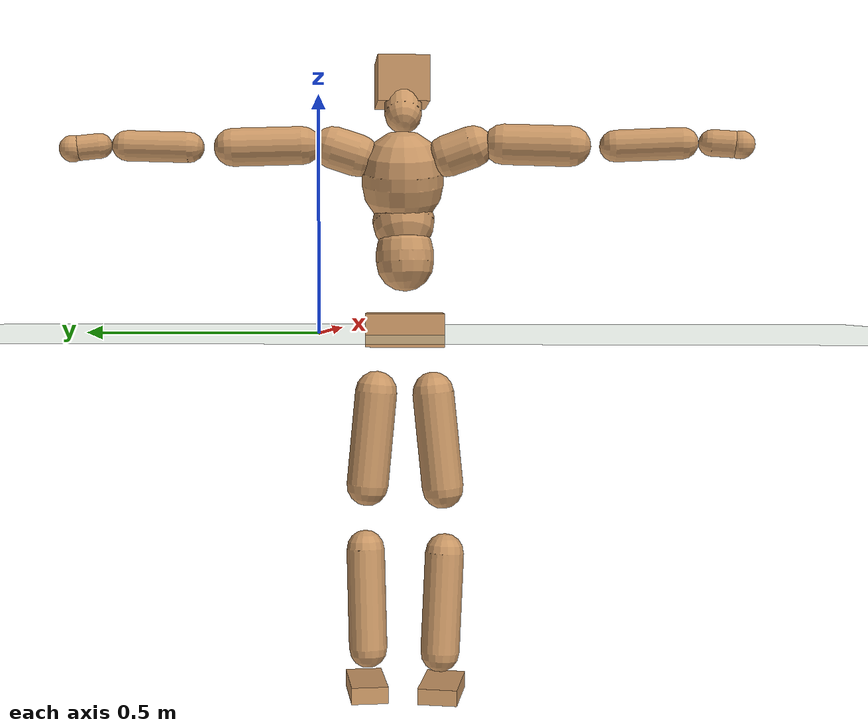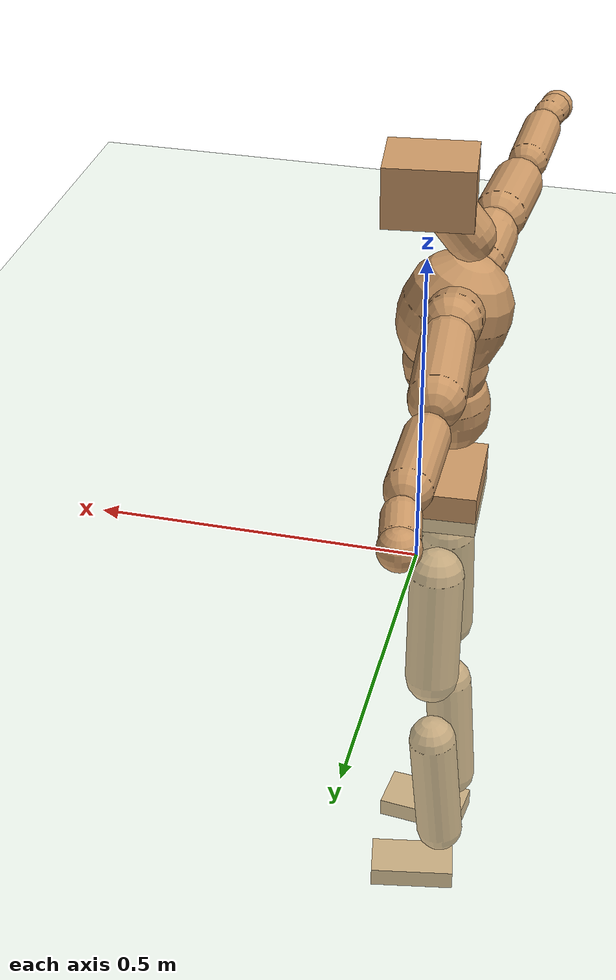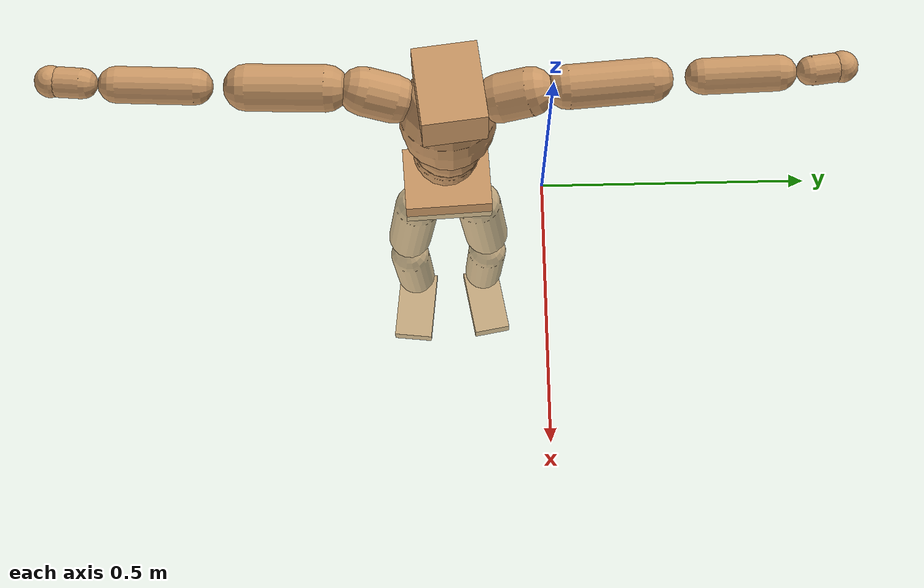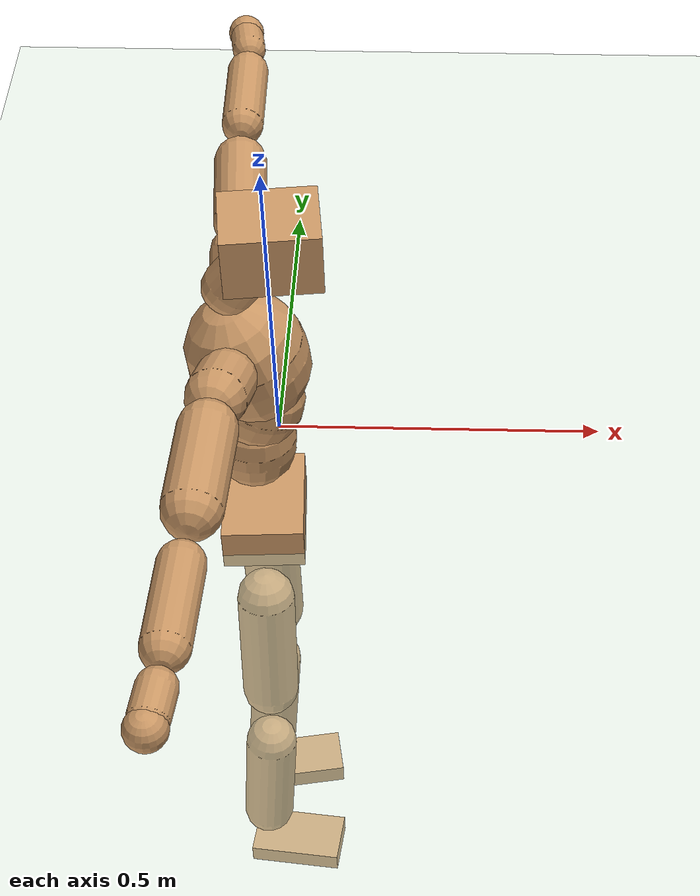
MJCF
<mujoco model="humanoid">
  <compiler coordinate="local" angle="radian"/>
  <default>
    <joint damping="0.0" armature="0.01" stiffness="0.0" limited="true"/>
    <geom conaffinity="1" condim="3" contype="7" margin="0.001" rgba="0.8 0.6 .4 1"/>
  </default>
  <asset>
    <texture type="skybox" builtin="gradient" rgb1=".4 .5 .6" rgb2="0 0 0" width="100" height="100"/>
    <texture builtin="flat" height="1278" mark="cross" markrgb="1 1 1" name="texgeom" random="0.01" rgb1="0.8 0.6 0.4" rgb2="0.8 0.6 0.4" type="cube" width="127"/>
    <texture builtin="checker" height="100" name="texplane" rgb1="0 0 0" rgb2="0.8 0.8 0.8" type="2d" width="100"/>
    <material name="MatPlane" reflectance="0.5" shininess="1" specular="1" texrepeat="60 60" texture="texplane"/>
    <material name="geom" texture="texgeom" texuniform="true"/>
  </asset>
  <worldbody>
    <light cutoff="100" diffuse="1 1 1" dir="-0 0 -1.3" directional="true" exponent="1" pos="0 0 1.3" specular=".1 .1 .1"/>
    <geom conaffinity="1" condim="3" name="floor" pos="0 0 0" rgba="0.8 0.9 0.8 1" size="100 100 .2" type="plane" material="MatPlane"/>
    <body name="Pelvis" pos="-0.003 -0.1813 0.0187">
      <freejoint name="Pelvis"/>
      <geom type="box" contype="1" conaffinity="1" density="500" pos="-0.0045 -0.0002 -0.0109" size="0.0604 0.0816 0.0347" quat="0.9997 0.0000 0.0000 0.0260" name="Pelvis"/>
      <body name="L_Hip" pos="-0.009 0.054 -0.076">
        <joint name="L_Hip_x" type="hinge" pos="0 0 0" axis="1 0 0" stiffness="800" damping="80" armature="0.02" range="-180.0000 180.0000"/>
        <joint name="L_Hip_y" type="hinge" pos="0 0 0" axis="0 1 0" stiffness="800" damping="80" armature="0.02" range="-180.0000 180.0000"/>
        <joint name="L_Hip_z" type="hinge" pos="0 0 0" axis="0 0 1" stiffness="800" damping="80" armature="0.02" range="-180.0000 180.0000"/>
        <geom type="capsule" contype="1" conaffinity="1" density="500" fromto="-0.0005 0.0060 -0.0659 -0.0021 0.0242 -0.2635" size="0.0442" name="L_Hip"/>
        <body name="L_Knee" pos="-0.0026 0.0302 -0.3294">
          <joint name="L_Knee_x" type="hinge" pos="0 0 0" axis="1 0 0" stiffness="800" damping="80" armature="0.02" range="-180.0000 180.0000"/>
          <joint name="L_Knee_y" type="hinge" pos="0 0 0" axis="0 1 0" stiffness="800" damping="80" armature="0.02" range="-180.0000 180.0000"/>
          <joint name="L_Knee_z" type="hinge" pos="0 0 0" axis="0 0 1" stiffness="800" damping="80" armature="0.02" range="-180.0000 180.0000"/>
          <geom type="capsule" contype="1" conaffinity="1" density="500" fromto="-0.0060 -0.0022 -0.0696 -0.0242 -0.0089 -0.2785" size="0.0401" name="L_Knee"/>
          <body name="L_Ankle" pos="-0.0302 -0.0112 -0.3481">
            <joint name="L_Ankle_x" type="hinge" pos="0 0 0" axis="1 0 0" stiffness="800" damping="80" armature="0.02" range="-180.0000 180.0000"/>
            <joint name="L_Ankle_y" type="hinge" pos="0 0 0" axis="0 1 0" stiffness="800" damping="80" armature="0.02" range="-180.0000 180.0000"/>
            <joint name="L_Ankle_z" type="hinge" pos="0 0 0" axis="0 0 1" stiffness="800" damping="80" armature="0.02" range="-180.0000 180.0000"/>
            <geom type="box" contype="1" conaffinity="1" density="500" pos="0.0513 0.0091 -0.0250" size="0.0719 0.0389 0.0177" quat="0.9961 0.0000 0.0000 0.0879" name="L_Ankle"/>
            <body name="L_Toe" pos="0.1027 0.0183 -0.05">
              <joint name="L_Toe_x" type="hinge" pos="0 0 0" axis="1 0 0" stiffness="500" damping="50" armature="0.02" range="-180.0000 180.0000"/>
              <joint name="L_Toe_y" type="hinge" pos="0 0 0" axis="0 1 0" stiffness="500" damping="50" armature="0.02" range="-180.0000 180.0000"/>
              <joint name="L_Toe_z" type="hinge" pos="0 0 0" axis="0 0 1" stiffness="500" damping="50" armature="0.02" range="-180.0000 180.0000"/>
              <geom type="box" contype="1" conaffinity="1" density="500" pos="0.0000 0.0000 0.0260" size="0.0008 0.002 0.0009" quat="0.9954 0.0000 0.0000 0.0955" name="L_Toe"/>
            </body>
          </body>
        </body>
      </body>
      <body name="R_Hip" pos="-0.0051 -0.0533 -0.0759">
        <joint name="R_Hip_x" type="hinge" pos="0 0 0" axis="1 0 0" stiffness="800" damping="80" armature="0.02" range="-180.0000 180.0000"/>
        <joint name="R_Hip_y" type="hinge" pos="0 0 0" axis="0 1 0" stiffness="800" damping="80" armature="0.02" range="-180.0000 180.0000"/>
        <joint name="R_Hip_z" type="hinge" pos="0 0 0" axis="0 0 1" stiffness="800" damping="80" armature="0.02" range="-180.0000 180.0000"/>
        <geom type="capsule" contype="1" conaffinity="1" density="500" fromto="-0.0008 -0.0069 -0.0672 -0.0030 -0.0276 -0.2688" size="0.0437" name="R_Hip"/>
        <body name="R_Knee" pos="-0.0038 -0.0346 -0.3361">
          <joint name="R_Knee_x" type="hinge" pos="0 0 0" axis="1 0 0" stiffness="800" damping="80" armature="0.02" range="-180.0000 180.0000"/>
          <joint name="R_Knee_y" type="hinge" pos="0 0 0" axis="0 1 0" stiffness="800" damping="80" armature="0.02" range="-180.0000 180.0000"/>
          <joint name="R_Knee_z" type="hinge" pos="0 0 0" axis="0 0 1" stiffness="800" damping="80" armature="0.02" range="-180.0000 180.0000"/>
          <geom type="capsule" contype="1" conaffinity="1" density="500" fromto="-0.0055 0.0029 -0.0697 -0.0218 0.0116 -0.2788" size="0.0408" name="R_Knee"/>
          <body name="R_Ankle" pos="-0.0273 0.0144 -0.3485">
            <joint name="R_Ankle_x" type="hinge" pos="0 0 0" axis="1 0 0" stiffness="800" damping="80" armature="0.02" range="-180.0000 180.0000"/>
            <joint name="R_Ankle_y" type="hinge" pos="0 0 0" axis="0 1 0" stiffness="800" damping="80" armature="0.02" range="-180.0000 180.0000"/>
            <joint name="R_Ankle_z" type="hinge" pos="0 0 0" axis="0 0 1" stiffness="800" damping="80" armature="0.02" range="-180.0000 180.0000"/>
            <geom type="box" contype="1" conaffinity="1" density="500" pos="0.0528 -0.0058 -0.0205" size="0.0741 0.0416 0.0168" quat="0.9985 0.0000 0.0000 -0.0544" name="R_Ankle"/>
            <body name="R_Toe" pos="0.1055 -0.0115 -0.0411">
              <joint name="R_Toe_x" type="hinge" pos="0 0 0" axis="1 0 0" stiffness="500" damping="50" armature="0.02" range="-180.0000 180.0000"/>
              <joint name="R_Toe_y" type="hinge" pos="0 0 0" axis="0 1 0" stiffness="500" damping="50" armature="0.02" range="-180.0000 180.0000"/>
              <joint name="R_Toe_z" type="hinge" pos="0 0 0" axis="0 0 1" stiffness="500" damping="50" armature="0.02" range="-180.0000 180.0000"/>
              <geom type="box" contype="1" conaffinity="1" density="500" pos="0.0000 0.0000 0.0228" size="0.0008 0.0021 0.001" quat="0.9990 0.0000 0.0000 -0.0442" name="R_Toe"/>
            </body>
          </body>
        </body>
      </body>
      <body name="Torso" pos="-0.0127 -0.0021 0.0863">
        <joint name="Torso_x" type="hinge" pos="0 0 0" axis="1 0 0" stiffness="1000" damping="100" armature="0.02" range="-180.0000 180.0000"/>
        <joint name="Torso_y" type="hinge" pos="0 0 0" axis="0 1 0" stiffness="1000" damping="100" armature="0.02" range="-180.0000 180.0000"/>
        <joint name="Torso_z" type="hinge" pos="0 0 0" axis="0 0 1" stiffness="1000" damping="100" armature="0.02" range="-180.0000 180.0000"/>
        <geom type="capsule" contype="1" conaffinity="1" density="500" fromto="0.0032 0.0021 0.0654 0.0021 0.0014 0.0436" size="0.0606" name="Torso"/>
        <body name="Spine" pos="0.0053 0.0035 0.109">
          <joint name="Spine_x" type="hinge" pos="0 0 0" axis="1 0 0" stiffness="1000" damping="100" armature="0.02" range="-180.0000 180.0000"/>
          <joint name="Spine_y" type="hinge" pos="0 0 0" axis="0 1 0" stiffness="1000" damping="100" armature="0.02" range="-180.0000 180.0000"/>
          <joint name="Spine_z" type="hinge" pos="0 0 0" axis="0 0 1" stiffness="1000" damping="100" armature="0.02" range="-180.0000 180.0000"/>
          <geom type="capsule" contype="1" conaffinity="1" density="500" fromto="0.0102 0.0021 0.0261 0.0068 0.0014 0.0174" size="0.0646" name="Spine"/>
          <body name="Chest" pos="0.0169 0.0036 0.0434">
            <joint name="Chest_x" type="hinge" pos="0 0 0" axis="1 0 0" stiffness="1000" damping="100" armature="0.02" range="-180.0000 180.0000"/>
            <joint name="Chest_y" type="hinge" pos="0 0 0" axis="0 1 0" stiffness="1000" damping="100" armature="0.02" range="-180.0000 180.0000"/>
            <joint name="Chest_z" type="hinge" pos="0 0 0" axis="0 0 1" stiffness="1000" damping="100" armature="0.02" range="-180.0000 180.0000"/>
            <geom type="capsule" contype="1" conaffinity="1" density="500" fromto="-0.0230 -0.0012 0.0787 -0.0154 -0.0008 0.0525" size="0.0853" name="Chest"/>
            <body name="Neck" pos="-0.046 -0.0034 0.1832">
              <joint name="Neck_x" type="hinge" pos="0 0 0" axis="1 0 0" stiffness="500" damping="50" armature="0.02" range="-180.0000 180.0000"/>
              <joint name="Neck_y" type="hinge" pos="0 0 0" axis="0 1 0" stiffness="500" damping="50" armature="0.02" range="-180.0000 180.0000"/>
              <joint name="Neck_z" type="hinge" pos="0 0 0" axis="0 0 1" stiffness="500" damping="50" armature="0.02" range="-180.0000 180.0000"/>
              <geom type="capsule" contype="1" conaffinity="1" density="500" fromto="0.0091 0.0008 0.0115 0.0364 0.0030 0.0459" size="0.0383" name="Neck"/>
              <body name="Head" pos="0.0455 0.0038 0.0573">
                <joint name="Head_x" type="hinge" pos="0 0 0" axis="1 0 0" stiffness="500" damping="50" armature="0.02" range="-180.0000 180.0000"/>
                <joint name="Head_y" type="hinge" pos="0 0 0" axis="0 1 0" stiffness="500" damping="50" armature="0.02" range="-180.0000 180.0000"/>
                <joint name="Head_z" type="hinge" pos="0 0 0" axis="0 0 1" stiffness="500" damping="50" armature="0.02" range="-180.0000 180.0000"/>
                <geom type="box" contype="1" conaffinity="1" density="500" pos="0.0237 0.0029 0.0297" size="0.0675 0.0544 0.0471" quat="0.9982 0.0000 0.0000 0.0603" name="Head"/>
              </body>
            </body>
            <body name="L_Thorax" pos="-0.0335 0.0738 0.1065">
              <joint name="L_Thorax_x" type="hinge" pos="0 0 0" axis="1 0 0" stiffness="500" damping="50" armature="0.02" range="-180.0000 180.0000"/>
              <joint name="L_Thorax_y" type="hinge" pos="0 0 0" axis="0 1 0" stiffness="500" damping="50" armature="0.02" range="-180.0000 180.0000"/>
              <joint name="L_Thorax_z" type="hinge" pos="0 0 0" axis="0 0 1" stiffness="500" damping="50" armature="0.02" range="-180.0000 180.0000"/>
              <geom type="capsule" contype="1" conaffinity="1" density="500" fromto="-0.0013 0.0171 0.0055 -0.0052 0.0683 0.0220" size="0.0436" name="L_Thorax"/>
              <body name="L_Shoulder" pos="-0.0065 0.0853 0.0276">
                <joint name="L_Shoulder_x" type="hinge" pos="0 0 0" axis="1 0 0" stiffness="500" damping="50" armature="0.02" range="-720.0000 720.0000"/>
                <joint name="L_Shoulder_y" type="hinge" pos="0 0 0" axis="0 1 0" stiffness="500" damping="50" armature="0.02" range="-720.0000 720.0000"/>
                <joint name="L_Shoulder_z" type="hinge" pos="0 0 0" axis="0 0 1" stiffness="500" damping="50" armature="0.02" range="-720.0000 720.0000"/>
                <geom type="capsule" contype="1" conaffinity="1" density="500" fromto="-0.0040 0.0477 -0.0014 -0.0162 0.1907 -0.0055" size="0.0392" name="L_Shoulder"/>
                <body name="L_Elbow" pos="-0.0202 0.2383 -0.0069">
                  <joint name="L_Elbow_x" type="hinge" pos="0 0 0" axis="1 0 0" stiffness="500" damping="50" armature="0.02" range="-720.0000 720.0000"/>
                  <joint name="L_Elbow_y" type="hinge" pos="0 0 0" axis="0 1 0" stiffness="500" damping="50" armature="0.02" range="-720.0000 720.0000"/>
                  <joint name="L_Elbow_z" type="hinge" pos="0 0 0" axis="0 0 1" stiffness="500" damping="50" armature="0.02" range="-720.0000 720.0000"/>
                  <geom type="capsule" contype="1" conaffinity="1" density="500" fromto="-0.0008 0.0430 0.0014 -0.0031 0.1721 0.0055" size="0.0316" name="L_Elbow"/>
                  <body name="L_Wrist" pos="-0.0039 0.2151 0.0069">
                    <joint name="L_Wrist_x" type="hinge" pos="0 0 0" axis="1 0 0" stiffness="300" damping="30" armature="0.02" range="-180.0000 180.0000"/>
                    <joint name="L_Wrist_y" type="hinge" pos="0 0 0" axis="0 1 0" stiffness="300" damping="30" armature="0.02" range="-180.0000 180.0000"/>
                    <joint name="L_Wrist_z" type="hinge" pos="0 0 0" axis="0 0 1" stiffness="300" damping="30" armature="0.02" range="-180.0000 180.0000"/>
                    <geom type="capsule" contype="1" conaffinity="1" density="500" fromto="-0.0023 0.0138 -0.0017 -0.0092 0.0553 -0.0066" size="0.0258" name="L_Wrist"/>
                    <body name="L_Hand" pos="-0.0115 0.0691 -0.0083">
                      <joint name="L_Hand_x" type="hinge" pos="0 0 0" axis="1 0 0" stiffness="300" damping="30" armature="0.02" range="-180.0000 180.0000"/>
                      <joint name="L_Hand_y" type="hinge" pos="0 0 0" axis="0 1 0" stiffness="300" damping="30" armature="0.02" range="-180.0000 180.0000"/>
                      <joint name="L_Hand_z" type="hinge" pos="0 0 0" axis="0 0 1" stiffness="300" damping="30" armature="0.02" range="-180.0000 180.0000"/>
                      <geom type="sphere" contype="1" conaffinity="1" density="500" size="0.0278" pos="0.0000 0.0000 0.0000" name="L_Hand"/>
                    </body>
                  </body>
                </body>
              </body>
            </body>
            <body name="R_Thorax" pos="-0.0357 -0.0765 0.1038">
              <joint name="R_Thorax_x" type="hinge" pos="0 0 0" axis="1 0 0" stiffness="500" damping="50" armature="0.02" range="-180.0000 180.0000"/>
              <joint name="R_Thorax_y" type="hinge" pos="0 0 0" axis="0 1 0" stiffness="500" damping="50" armature="0.02" range="-180.0000 180.0000"/>
              <joint name="R_Thorax_z" type="hinge" pos="0 0 0" axis="0 0 1" stiffness="500" damping="50" armature="0.02" range="-180.0000 180.0000"/>
              <geom type="capsule" contype="1" conaffinity="1" density="500" fromto="-0.0025 -0.0174 0.0059 -0.0100 -0.0697 0.0237" size="0.0429" name="R_Thorax"/>
              <body name="R_Shoulder" pos="-0.0125 -0.0871 0.0296">
                <joint name="R_Shoulder_x" type="hinge" pos="0 0 0" axis="1 0 0" stiffness="500" damping="50" armature="0.02" range="-720.0000 720.0000"/>
                <joint name="R_Shoulder_y" type="hinge" pos="0 0 0" axis="0 1 0" stiffness="500" damping="50" armature="0.02" range="-720.0000 720.0000"/>
                <joint name="R_Shoulder_z" type="hinge" pos="0 0 0" axis="0 0 1" stiffness="500" damping="50" armature="0.02" range="-720.0000 720.0000"/>
                <geom type="capsule" contype="1" conaffinity="1" density="500" fromto="-0.0022 -0.0454 -0.0019 -0.0089 -0.1817 -0.0076" size="0.0413" name="R_Shoulder"/>
                <body name="R_Elbow" pos="-0.0112 -0.2271 -0.0095">
                  <joint name="R_Elbow_x" type="hinge" pos="0 0 0" axis="1 0 0" stiffness="500" damping="50" armature="0.02" range="-720.0000 720.0000"/>
                  <joint name="R_Elbow_y" type="hinge" pos="0 0 0" axis="0 1 0" stiffness="500" damping="50" armature="0.02" range="-720.0000 720.0000"/>
                  <joint name="R_Elbow_z" type="hinge" pos="0 0 0" axis="0 0 1" stiffness="500" damping="50" armature="0.02" range="-720.0000 720.0000"/>
                  <geom type="capsule" contype="1" conaffinity="1" density="500" fromto="-0.0015 -0.0446 0.0013 -0.0060 -0.1783 0.0053" size="0.0322" name="R_Elbow"/>
                  <body name="R_Wrist" pos="-0.0075 -0.2229 0.0066">
                    <joint name="R_Wrist_x" type="hinge" pos="0 0 0" axis="1 0 0" stiffness="300" damping="30" armature="0.02" range="-180.0000 180.0000"/>
                    <joint name="R_Wrist_y" type="hinge" pos="0 0 0" axis="0 1 0" stiffness="300" damping="30" armature="0.02" range="-180.0000 180.0000"/>
                    <joint name="R_Wrist_z" type="hinge" pos="0 0 0" axis="0 0 1" stiffness="300" damping="30" armature="0.02" range="-180.0000 180.0000"/>
                    <geom type="capsule" contype="1" conaffinity="1" density="500" fromto="-0.0018 -0.0141 -0.0013 -0.0070 -0.0562 -0.0051" size="0.0268" name="R_Wrist"/>
                    <body name="R_Hand" pos="-0.0088 -0.0703 -0.0064">
                      <joint name="R_Hand_x" type="hinge" pos="0 0 0" axis="1 0 0" stiffness="300" damping="30" armature="0.02" range="-180.0000 180.0000"/>
                      <joint name="R_Hand_y" type="hinge" pos="0 0 0" axis="0 1 0" stiffness="300" damping="30" armature="0.02" range="-180.0000 180.0000"/>
                      <joint name="R_Hand_z" type="hinge" pos="0 0 0" axis="0 0 1" stiffness="300" damping="30" armature="0.02" range="-180.0000 180.0000"/>
                      <geom type="sphere" contype="1" conaffinity="1" density="500" size="0.0282" pos="0.0000 0.0000 0.0000" name="R_Hand"/>
                    </body>
                  </body>
                </body>
              </body>
            </body>
          </body>
        </body>
      </body>
    </body>
  </worldbody>
  <actuator>
    <motor name="L_Hip_x" joint="L_Hip_x" gear="500"/>
    <motor name="L_Hip_y" joint="L_Hip_y" gear="500"/>
    <motor name="L_Hip_z" joint="L_Hip_z" gear="500"/>
    <motor name="L_Knee_x" joint="L_Knee_x" gear="500"/>
    <motor name="L_Knee_y" joint="L_Knee_y" gear="500"/>
    <motor name="L_Knee_z" joint="L_Knee_z" gear="500"/>
    <motor name="L_Ankle_x" joint="L_Ankle_x" gear="500"/>
    <motor name="L_Ankle_y" joint="L_Ankle_y" gear="500"/>
    <motor name="L_Ankle_z" joint="L_Ankle_z" gear="500"/>
    <motor name="L_Toe_x" joint="L_Toe_x" gear="500"/>
    <motor name="L_Toe_y" joint="L_Toe_y" gear="500"/>
    <motor name="L_Toe_z" joint="L_Toe_z" gear="500"/>
    <motor name="R_Hip_x" joint="R_Hip_x" gear="500"/>
    <motor name="R_Hip_y" joint="R_Hip_y" gear="500"/>
    <motor name="R_Hip_z" joint="R_Hip_z" gear="500"/>
    <motor name="R_Knee_x" joint="R_Knee_x" gear="500"/>
    <motor name="R_Knee_y" joint="R_Knee_y" gear="500"/>
    <motor name="R_Knee_z" joint="R_Knee_z" gear="500"/>
    <motor name="R_Ankle_x" joint="R_Ankle_x" gear="500"/>
    <motor name="R_Ankle_y" joint="R_Ankle_y" gear="500"/>
    <motor name="R_Ankle_z" joint="R_Ankle_z" gear="500"/>
    <motor name="R_Toe_x" joint="R_Toe_x" gear="500"/>
    <motor name="R_Toe_y" joint="R_Toe_y" gear="500"/>
    <motor name="R_Toe_z" joint="R_Toe_z" gear="500"/>
    <motor name="Torso_x" joint="Torso_x" gear="500"/>
    <motor name="Torso_y" joint="Torso_y" gear="500"/>
    <motor name="Torso_z" joint="Torso_z" gear="500"/>
    <motor name="Spine_x" joint="Spine_x" gear="500"/>
    <motor name="Spine_y" joint="Spine_y" gear="500"/>
    <motor name="Spine_z" joint="Spine_z" gear="500"/>
    <motor name="Chest_x" joint="Chest_x" gear="500"/>
    <motor name="Chest_y" joint="Chest_y" gear="500"/>
    <motor name="Chest_z" joint="Chest_z" gear="500"/>
    <motor name="Neck_x" joint="Neck_x" gear="500"/>
    <motor name="Neck_y" joint="Neck_y" gear="500"/>
    <motor name="Neck_z" joint="Neck_z" gear="500"/>
    <motor name="Head_x" joint="Head_x" gear="500"/>
    <motor name="Head_y" joint="Head_y" gear="500"/>
    <motor name="Head_z" joint="Head_z" gear="500"/>
    <motor name="L_Thorax_x" joint="L_Thorax_x" gear="500"/>
    <motor name="L_Thorax_y" joint="L_Thorax_y" gear="500"/>
    <motor name="L_Thorax_z" joint="L_Thorax_z" gear="500"/>
    <motor name="L_Shoulder_x" joint="L_Shoulder_x" gear="500"/>
    <motor name="L_Shoulder_y" joint="L_Shoulder_y" gear="500"/>
    <motor name="L_Shoulder_z" joint="L_Shoulder_z" gear="500"/>
    <motor name="L_Elbow_x" joint="L_Elbow_x" gear="500"/>
    <motor name="L_Elbow_y" joint="L_Elbow_y" gear="500"/>
    <motor name="L_Elbow_z" joint="L_Elbow_z" gear="500"/>
    <motor name="L_Wrist_x" joint="L_Wrist_x" gear="500"/>
    <motor name="L_Wrist_y" joint="L_Wrist_y" gear="500"/>
    <motor name="L_Wrist_z" joint="L_Wrist_z" gear="500"/>
    <motor name="L_Hand_x" joint="L_Hand_x" gear="500"/>
    <motor name="L_Hand_y" joint="L_Hand_y" gear="500"/>
    <motor name="L_Hand_z" joint="L_Hand_z" gear="500"/>
    <motor name="R_Thorax_x" joint="R_Thorax_x" gear="500"/>
    <motor name="R_Thorax_y" joint="R_Thorax_y" gear="500"/>
    <motor name="R_Thorax_z" joint="R_Thorax_z" gear="500"/>
    <motor name="R_Shoulder_x" joint="R_Shoulder_x" gear="500"/>
    <motor name="R_Shoulder_y" joint="R_Shoulder_y" gear="500"/>
    <motor name="R_Shoulder_z" joint="R_Shoulder_z" gear="500"/>
    <motor name="R_Elbow_x" joint="R_Elbow_x" gear="500"/>
    <motor name="R_Elbow_y" joint="R_Elbow_y" gear="500"/>
    <motor name="R_Elbow_z" joint="R_Elbow_z" gear="500"/>
    <motor name="R_Wrist_x" joint="R_Wrist_x" gear="500"/>
    <motor name="R_Wrist_y" joint="R_Wrist_y" gear="500"/>
    <motor name="R_Wrist_z" joint="R_Wrist_z" gear="500"/>
    <motor name="R_Hand_x" joint="R_Hand_x" gear="500"/>
    <motor name="R_Hand_y" joint="R_Hand_y" gear="500"/>
    <motor name="R_Hand_z" joint="R_Hand_z" gear="500"/>
  </actuator>
  <contact>
    <exclude body1="Torso" body2="Chest"/>
    <exclude body1="Head" body2="Chest"/>
    <exclude body1="R_Knee" body2="R_Toe"/>
    <exclude body1="R_Knee" body2="L_Ankle"/>
    <exclude body1="R_Knee" body2="L_Toe"/>
    <exclude body1="L_Knee" body2="L_Toe"/>
    <exclude body1="L_Knee" body2="R_Ankle"/>
    <exclude body1="L_Knee" body2="R_Toe"/>
    <exclude body1="L_Shoulder" body2="Chest"/>
    <exclude body1="R_Shoulder" body2="Chest"/>
  </contact>
  <sensor/>
  <size njmax="700" nconmax="700"/>
</mujoco>
